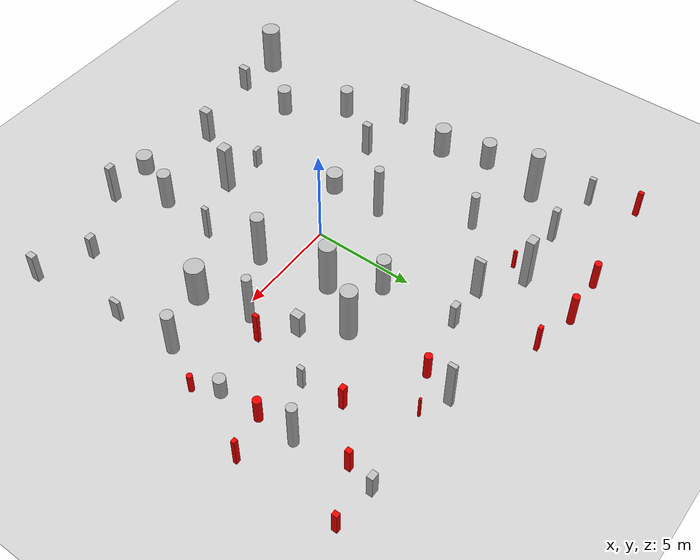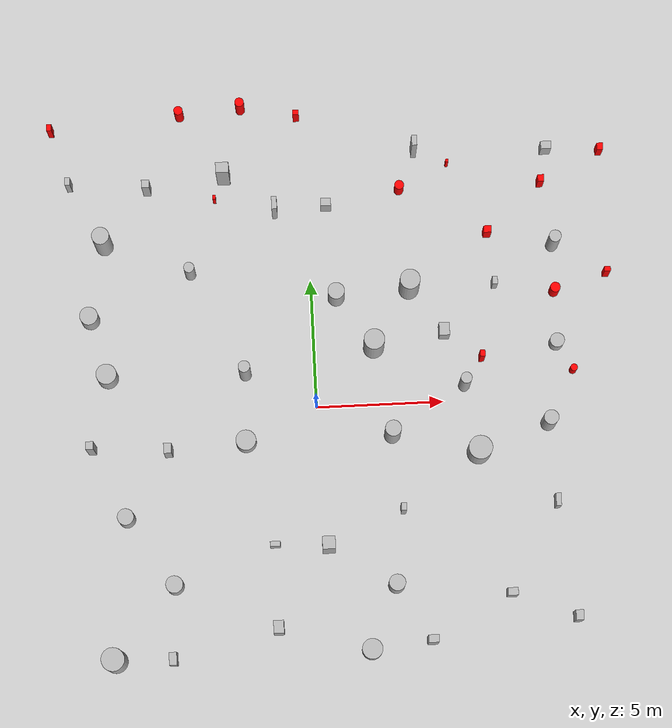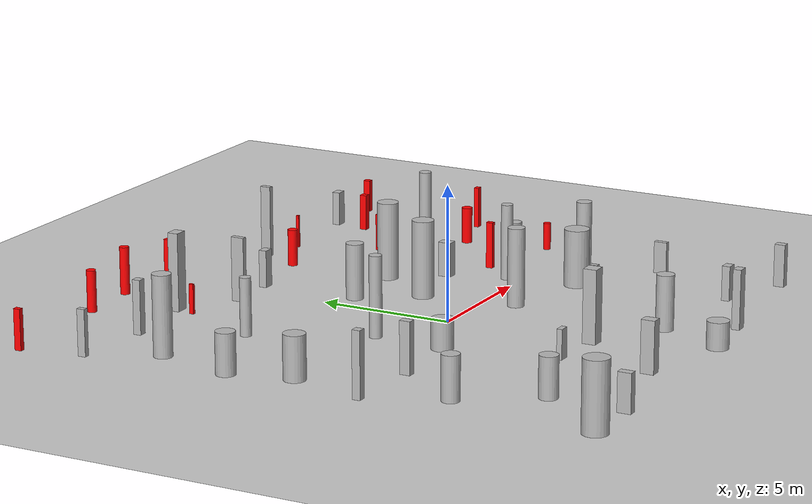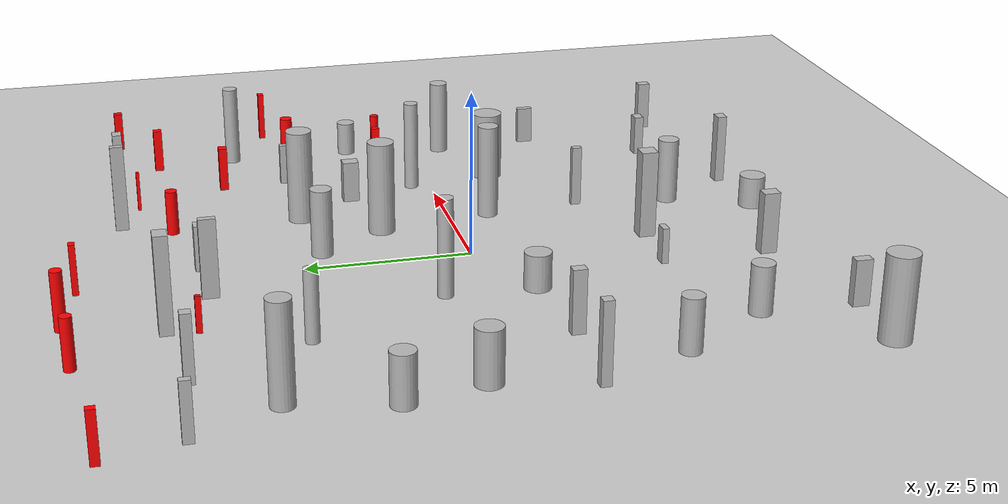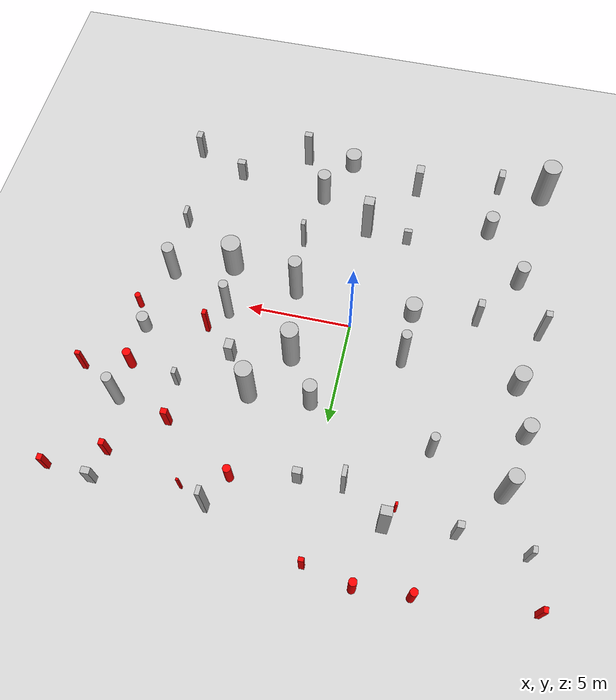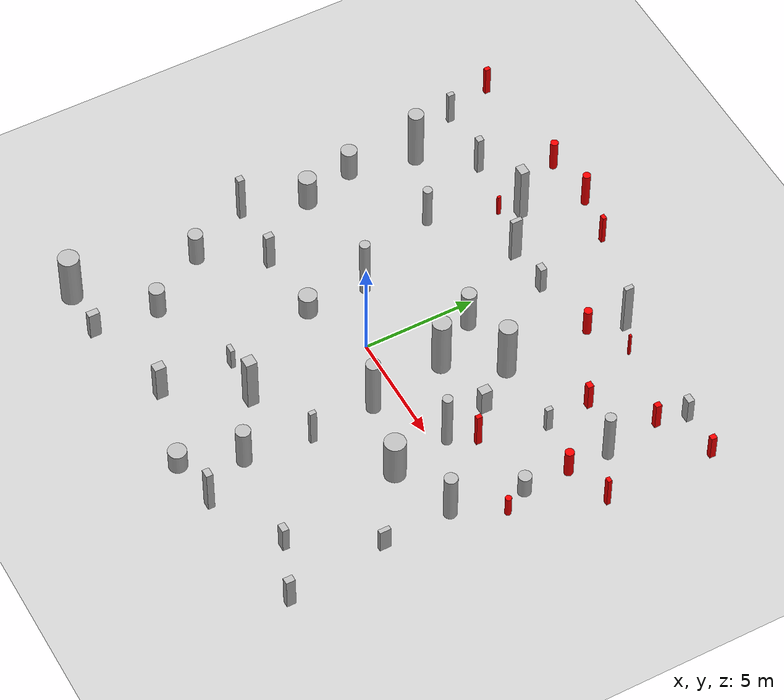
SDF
<?xml version="1.0" ?>
<sdf version="1.7">
  <world name="default">
    <include>
      <uri>model://ground_plane</uri>
    </include>
    <include>
      <uri>model://sun</uri>
    </include>
    <physics type="ode">
      <max_step_size>0.001</max_step_size>
      <real_time_factor>1</real_time_factor>
    </physics>
    <plugin name="gazebo_ros_init" filename="libgazebo_ros_init.so"/>
    <plugin name="gazebo_ros_factory" filename="libgazebo_ros_factory.so"/>
    <plugin name="gazebo_ros_force_system" filename="libgazebo_ros_force_system.so"/>
    <model name='cylinder_0_0.7_0.7_2.1'>
<static>true</static>
                            <pose>0.9762700785464951 4.30378732744839 1.0448831829968968 0 0 0</pose> <!-- X, Y, Z, Roll, Pitch, Yaw -->
                            <link name='link'>
                                <visual name='visual'>
                                <geometry>
                                    <cylinder>
                                        <radius>0.3270964398016714</radius>
                                        <length>2.0897663659937935</length>
                                    </cylinder>
                                </geometry>
                                </visual><collision name='collision'><geometry>
                                    <cylinder>
                                        <radius>0.3270964398016714</radius>
                                        <length>2.0897663659937935</length>
                                    </cylinder>
                                </geometry></collision>
                            </link>
    </model>
    <model name='cylinder_1_0.6_0.6_2.9'>
<static>true</static>
                            <pose>2.917882261333123 -1.2482557747461502 1.4636627605010293 0 0 0</pose> <!-- X, Y, Z, Roll, Pitch, Yaw -->
                            <link name='link'>
                                <visual name='visual'>
                                <geometry>
                                    <cylinder>
                                        <radius>0.3150324556477333</radius>
                                        <length>2.9273255210020586</length>
                                    </cylinder>
                                </geometry>
                                </visual><collision name='collision'><geometry>
                                    <cylinder>
                                        <radius>0.3150324556477333</radius>
                                        <length>2.9273255210020586</length>
                                    </cylinder>
                                </geometry></collision>
                            </link>
    </model>
    <model name='cylinder_2_0.4_0.4_2.9'>
<static>true</static>
                            <pose>5.834500761653292 0.5778983950580887 1.425596638292661 0 0 0</pose> <!-- X, Y, Z, Roll, Pitch, Yaw -->
                            <link name='link'>
                                <visual name='visual'>
                                <geometry>
                                    <cylinder>
                                        <radius>0.2213108174593661</radius>
                                        <length>2.851193276585322</length>
                                    </cylinder>
                                </geometry>
                                </visual><collision name='collision'><geometry>
                                    <cylinder>
                                        <radius>0.2213108174593661</radius>
                                        <length>2.851193276585322</length>
                                    </cylinder>
                                </geometry></collision>
                            </link>
    </model>
    <model name='cylinder_3_0.9_0.9_2.6'>
<static>true</static>
                            <pose>-8.257414005969185 -9.595632051193485 1.2781567509498504 0 0 0</pose> <!-- X, Y, Z, Roll, Pitch, Yaw -->
                            <link name='link'>
                                <visual name='visual'>
                                <geometry>
                                    <cylinder>
                                        <radius>0.46100364447404574</radius>
                                        <length>2.5563135018997007</length>
                                    </cylinder>
                                </geometry>
                                </visual><collision name='collision'><geometry>
                                    <cylinder>
                                        <radius>0.46100364447404574</radius>
                                        <length>2.5563135018997007</length>
                                    </cylinder>
                                </geometry></collision>
                            </link>
    </model>
    <model name='cylinder_4_0.5_0.5_2.6'>
<static>true</static>
                            <pose>9.572366844655281 5.983171284334471 1.2805291762864555 0 0 0</pose> <!-- X, Y, Z, Roll, Pitch, Yaw -->
                            <link name='link'>
                                <visual name='visual'>
                                <geometry>
                                    <cylinder>
                                        <radius>0.23548232776067998</radius>
                                        <length>2.561058352572911</length>
                                    </cylinder>
                                </geometry>
                                </visual><collision name='collision'><geometry>
                                    <cylinder>
                                        <radius>0.23548232776067998</radius>
                                        <length>2.561058352572911</length>
                                    </cylinder>
                                </geometry></collision>
                            </link>
    </model>
    <model name='cylinder_5_0.6_0.6_2.0'>
<static>true</static>
                            <pose>2.798420426550477 -7.132934251819072 1.0218483217500718 0 0 0</pose> <!-- X, Y, Z, Roll, Pitch, Yaw -->
                            <link name='link'>
                                <visual name='visual'>
                                <geometry>
                                    <cylinder>
                                        <radius>0.3243985819971571</radius>
                                        <length>2.0436966435001436</length>
                                    </cylinder>
                                </geometry>
                                </visual><collision name='collision'><geometry>
                                    <cylinder>
                                        <radius>0.3243985819971571</radius>
                                        <length>2.0436966435001436</length>
                                    </cylinder>
                                </geometry></collision>
                            </link>
    </model>
    <model name='cylinder_6_0.4_0.4_2.1'>
<static>true</static>
                            <pose>-4.70888775790746 5.484673788684333 1.0684339488686485 0 0 0</pose> <!-- X, Y, Z, Roll, Pitch, Yaw -->
                            <link name='link'>
                                <visual name='visual'>
                                <geometry>
                                    <cylinder>
                                        <radius>0.20563694013090655</radius>
                                        <length>2.136867897737297</length>
                                    </cylinder>
                                </geometry>
                                </visual><collision name='collision'><geometry>
                                    <cylinder>
                                        <radius>0.20563694013090655</radius>
                                        <length>2.136867897737297</length>
                                    </cylinder>
                                </geometry></collision>
                            </link>
    </model>
    <model name='cylinder_7_0.8_0.8_2.9'>
<static>true</static>
                            <pose>2.352709941517542 2.2419144544484286 1.4437480785146242 0 0 0</pose> <!-- X, Y, Z, Roll, Pitch, Yaw -->
                            <link name='link'>
                                <visual name='visual'>
                                <geometry>
                                    <cylinder>
                                        <radius>0.404546089731045</radius>
                                        <length>2.8874961570292483</length>
                                    </cylinder>
                                </geometry>
                                </visual><collision name='collision'><geometry>
                                    <cylinder>
                                        <radius>0.404546089731045</radius>
                                        <length>2.8874961570292483</length>
                                    </cylinder>
                                </geometry></collision>
                            </link>
    </model>
    <model name='cylinder_8_0.8_0.8_1.1'>
<static>true</static>
                            <pose>-2.80984198852428 -1.259360924013171 0.5602254716292698 0 0 0</pose> <!-- X, Y, Z, Roll, Pitch, Yaw -->
                            <link name='link'>
                                <visual name='visual'>
                                <geometry>
                                    <cylinder>
                                        <radius>0.4000300146337003</radius>
                                        <length>1.1204509432585397</length>
                                    </cylinder>
                                </geometry>
                                </visual><collision name='collision'><geometry>
                                    <cylinder>
                                        <radius>0.4000300146337003</radius>
                                        <length>1.1204509432585397</length>
                                    </cylinder>
                                </geometry></collision>
                            </link>
    </model>
    <model name='cylinder_9_0.5_0.5_3.0'>
<static>true</static>
                            <pose>-2.725784581147548 1.4039354083575937 1.4883738380592262 0 0 0</pose> <!-- X, Y, Z, Roll, Pitch, Yaw -->
                            <link name='link'>
                                <visual name='visual'>
                                <geometry>
                                    <cylinder>
                                        <radius>0.23061344322440844</radius>
                                        <length>2.9767476761184524</length>
                                    </cylinder>
                                </geometry>
                                </visual><collision name='collision'><geometry>
                                    <cylinder>
                                        <radius>0.23061344322440844</radius>
                                        <length>2.9767476761184524</length>
                                    </cylinder>
                                </geometry></collision>
                            </link>
    </model>
    <model name='cylinder_10_0.7_0.7_1.5'>
<static>true</static>
                            <pose>-5.822464878103306 -6.773809642300074 0.7532916025397821 0 0 0</pose> <!-- X, Y, Z, Roll, Pitch, Yaw -->
                            <link name='link'>
                                <visual name='visual'>
                                <geometry>
                                    <cylinder>
                                        <radius>0.3398932318568919</radius>
                                        <length>1.5065832050795642</length>
                                    </cylinder>
                                </geometry>
                                </visual><collision name='collision'><geometry>
                                    <cylinder>
                                        <radius>0.3398932318568919</radius>
                                        <length>1.5065832050795642</length>
                                    </cylinder>
                                </geometry></collision>
                            </link>
    </model>
    <model name='cylinder_11_0.7_0.7_3.0'>
<static>true</static>
                            <pose>-8.057974484138775 6.758898149976076 1.4764594650133958 0 0 0</pose> <!-- X, Y, Z, Roll, Pitch, Yaw -->
                            <link name='link'>
                                <visual name='visual'>
                                <geometry>
                                    <cylinder>
                                        <radius>0.3405953604943105</radius>
                                        <length>2.9529189300267915</length>
                                    </cylinder>
                                </geometry>
                                </visual><collision name='collision'><geometry>
                                    <cylinder>
                                        <radius>0.3405953604943105</radius>
                                        <length>2.9529189300267915</length>
                                    </cylinder>
                                </geometry></collision>
                            </link>
    </model>
    <model name='cylinder_12_0.6_0.6_1.1'>
<static>true</static>
                            <pose>9.535221763806742 2.0969103949009202 0.5391877922543207 0 0 0</pose> <!-- X, Y, Z, Roll, Pitch, Yaw -->
                            <link name='link'>
                                <visual name='visual'>
                                <geometry>
                                    <cylinder>
                                        <radius>0.2848420887729229</radius>
                                        <length>1.0783755845086413</length>
                                    </cylinder>
                                </geometry>
                                </visual><collision name='collision'><geometry>
                                    <cylinder>
                                        <radius>0.2848420887729229</radius>
                                        <length>1.0783755845086413</length>
                                    </cylinder>
                                </geometry></collision>
                            </link>
    </model>
    <model name='cylinder_13_0.6_0.6_1.6'>
<static>true</static>
                            <pose>-7.596068775736622 -4.077196049557101 0.817983179393976 0 0 0</pose> <!-- X, Y, Z, Roll, Pitch, Yaw -->
                            <link name='link'>
                                <visual name='visual'>
                                <geometry>
                                    <cylinder>
                                        <radius>0.324278898354401</radius>
                                        <length>1.635966358787952</length>
                                    </cylinder>
                                </geometry>
                                </visual><collision name='collision'><geometry>
                                    <cylinder>
                                        <radius>0.324278898354401</radius>
                                        <length>1.635966358787952</length>
                                    </cylinder>
                                </geometry></collision>
                            </link>
    </model>
    <model name='cylinder_14_0.7_0.7_1.5'>
<static>true</static>
                            <pose>-8.717050073024312 3.849442387400398 0.7653894909394454 0 0 0</pose> <!-- X, Y, Z, Roll, Pitch, Yaw -->
                            <link name='link'>
                                <visual name='visual'>
                                <geometry>
                                    <cylinder>
                                        <radius>0.3569744160400099</radius>
                                        <length>1.5307789818788908</length>
                                    </cylinder>
                                </geometry>
                                </visual><collision name='collision'><geometry>
                                    <cylinder>
                                        <radius>0.3569744160400099</radius>
                                        <length>1.5307789818788908</length>
                                    </cylinder>
                                </geometry></collision>
                            </link>
    </model>
    <model name='cylinder_15_0.8_0.8_1.6'>
<static>true</static>
                            <pose>-8.121189784831166 1.5189299111235854 0.8185689524513237 0 0 0</pose> <!-- X, Y, Z, Roll, Pitch, Yaw -->
                            <link name='link'>
                                <visual name='visual'>
                                <geometry>
                                    <cylinder>
                                        <radius>0.4002231139891045</radius>
                                        <length>1.6371379049026473</length>
                                    </cylinder>
                                </geometry>
                                </visual><collision name='collision'><geometry>
                                    <cylinder>
                                        <radius>0.4002231139891045</radius>
                                        <length>1.6371379049026473</length>
                                    </cylinder>
                                </geometry></collision>
                            </link>
    </model>
    <model name='cylinder_16_0.8_0.8_1.0'>
<static>true</static>
                            <pose>1.7302586962016626 -9.597849076250128 0.5046954761925471 0 0 0</pose> <!-- X, Y, Z, Roll, Pitch, Yaw -->
                            <link name='link'>
                                <visual name='visual'>
                                <geometry>
                                    <cylinder>
                                        <radius>0.4033449610388691</radius>
                                        <length>1.0093909523850941</length>
                                    </cylinder>
                                </geometry>
                                </visual><collision name='collision'><geometry>
                                    <cylinder>
                                        <radius>0.4033449610388691</radius>
                                        <length>1.0093909523850941</length>
                                    </cylinder>
                                </geometry></collision>
                            </link>
    </model>
    <model name='cylinder_17_0.6_0.6_2.4'>
<static>true</static>
                            <pose>9.054980230339702 -1.0574924276474533 1.1994792753175043 0 0 0</pose> <!-- X, Y, Z, Roll, Pitch, Yaw -->
                            <link name='link'>
                                <visual name='visual'>
                                <geometry>
                                    <cylinder>
                                        <radius>0.2892310852565401</radius>
                                        <length>2.3989585506350086</length>
                                    </cylinder>
                                </geometry>
                                </visual><collision name='collision'><geometry>
                                    <cylinder>
                                        <radius>0.2892310852565401</radius>
                                        <length>2.3989585506350086</length>
                                    </cylinder>
                                </geometry></collision>
                            </link>
    </model>
    <model name='cylinder_18_0.9_0.9_2.2'>
<static>true</static>
                            <pose>6.275956394049544 -2.0698851830603076 1.0812728726358587 0 0 0</pose> <!-- X, Y, Z, Roll, Pitch, Yaw -->
                            <link name='link'>
                                <visual name='visual'>
                                <geometry>
                                    <cylinder>
                                        <radius>0.4645206085564558</radius>
                                        <length>2.1625457452717174</length>
                                    </cylinder>
                                </geometry>
                                </visual><collision name='collision'><geometry>
                                    <cylinder>
                                        <radius>0.4645206085564558</radius>
                                        <length>2.1625457452717174</length>
                                    </cylinder>
                                </geometry></collision>
                            </link>
    </model>
    <model name='cylinder_19_0.8_0.8_2.9'>
<static>true</static>
                            <pose>3.850631801555318 4.50508559639281 1.4560836347232238 0 0 0</pose> <!-- X, Y, Z, Roll, Pitch, Yaw -->
                            <link name='link'>
                                <visual name='visual'>
                                <geometry>
                                    <cylinder>
                                        <radius>0.3931970597688912</radius>
                                        <length>2.9121672694464475</length>
                                    </cylinder>
                                </geometry>
                                </visual><collision name='collision'><geometry>
                                    <cylinder>
                                        <radius>0.3931970597688912</radius>
                                        <length>2.9121672694464475</length>
                                    </cylinder>
                                </geometry></collision>
                            </link>
    </model>
    <model name='box_0_0.2_0.3_1.9'>
<static>true</static>
                            <pose>3.2034707498537003 -4.198447855791119 0.9287687009457661 0 0 0</pose> <!-- X, Y, Z, Roll, Pitch, Yaw -->
                            <link name='link'>
                                <visual name='visual'>
                                <geometry>
                                    <box>
                                        <size>0.2 0.3 1.9</size> <!-- Width, Depth, Height -->
                                    </box>
                                </geometry>
                                </visual><collision name='collision'><geometry>
                                    <box>
                                        <size>0.2 0.3 1.9</size> <!-- Width, Depth, Height -->
                                    </box>
                                </geometry></collision>
                            </link>
    </model>
    <model name='box_1_0.2_0.5_2.4'>
<static>true</static>
                            <pose>-1.2827014946874638 7.838467100313441 1.2038885835403663 0 0 0</pose> <!-- X, Y, Z, Roll, Pitch, Yaw -->
                            <link name='link'>
                                <visual name='visual'>
                                <geometry>
                                    <box>
                                        <size>0.2 0.5 2.4</size> <!-- Width, Depth, Height -->
                                    </box>
                                </geometry>
                                </visual><collision name='collision'><geometry>
                                    <box>
                                        <size>0.2 0.5 2.4</size> <!-- Width, Depth, Height -->
                                    </box>
                                </geometry></collision>
                            </link>
    </model>
    <model name='box_2_0.2_0.4_2.7'>
<static>true</static>
                            <pose>4.2848259909822275 9.976940131357331 1.3681260573682144 0 0 0</pose> <!-- X, Y, Z, Roll, Pitch, Yaw -->
                            <link name='link'>
                                <visual name='visual'>
                                <geometry>
                                    <box>
                                        <size>0.2 0.4 2.7</size> <!-- Width, Depth, Height -->
                                    </box>
                                </geometry>
                                </visual><collision name='collision'><geometry>
                                    <box>
                                        <size>0.2 0.4 2.7</size> <!-- Width, Depth, Height -->
                                    </box>
                                </geometry></collision>
                            </link>
    </model>
    <model name='box_3_0.4_0.5_1.9'>
<static>true</static>
                            <pose>-1.8563340554800067 -8.61666009089724 0.9535426826780689 0 0 0</pose> <!-- X, Y, Z, Roll, Pitch, Yaw -->
                            <link name='link'>
                                <visual name='visual'>
                                <geometry>
                                    <box>
                                        <size>0.4 0.5 1.9</size> <!-- Width, Depth, Height -->
                                    </box>
                                </geometry>
                                </visual><collision name='collision'><geometry>
                                    <box>
                                        <size>0.4 0.5 1.9</size> <!-- Width, Depth, Height -->
                                    </box>
                                </geometry></collision>
                            </link>
    </model>
    <model name='box_4_0.3_0.5_1.4'>
<static>true</static>
                            <pose>-6.000069502071998 -9.62956411078772 0.7239246880603801 0 0 0</pose> <!-- X, Y, Z, Roll, Pitch, Yaw -->
                            <link name='link'>
                                <visual name='visual'>
                                <geometry>
                                    <box>
                                        <size>0.3 0.5 1.4</size> <!-- Width, Depth, Height -->
                                    </box>
                                </geometry>
                                </visual><collision name='collision'><geometry>
                                    <box>
                                        <size>0.3 0.5 1.4</size> <!-- Width, Depth, Height -->
                                    </box>
                                </geometry></collision>
                            </link>
    </model>
    <model name='box_5_0.4_0.3_2.2'>
<static>true</static>
                            <pose>4.088288038470655 -9.363221409373843 1.1214784014997634 0 0 0</pose> <!-- X, Y, Z, Roll, Pitch, Yaw -->
                            <link name='link'>
                                <visual name='visual'>
                                <geometry>
                                    <box>
                                        <size>0.4 0.3 2.2</size> <!-- Width, Depth, Height -->
                                    </box>
                                </geometry>
                                </visual><collision name='collision'><geometry>
                                    <box>
                                        <size>0.4 0.3 2.2</size> <!-- Width, Depth, Height -->
                                    </box>
                                </geometry></collision>
                            </link>
    </model>
    <model name='box_6_0.3_0.3_2.0'>
<static>true</static>
                            <pose>-6.276139882393277 8.887447799678672 0.9904588086175671 0 0 0</pose> <!-- X, Y, Z, Roll, Pitch, Yaw -->
                            <link name='link'>
                                <visual name='visual'>
                                <geometry>
                                    <box>
                                        <size>0.3 0.3 2.0</size> <!-- Width, Depth, Height -->
                                    </box>
                                </geometry>
                                </visual><collision name='collision'><geometry>
                                    <box>
                                        <size>0.3 0.3 2.0</size> <!-- Width, Depth, Height -->
                                    </box>
                                </geometry></collision>
                            </link>
    </model>
    <model name='box_7_0.3_0.3_2.4'>
<static>true</static>
                            <pose>-8.839416793522489 -1.3116674888375854 1.1963434888154594 0 0 0</pose> <!-- X, Y, Z, Roll, Pitch, Yaw -->
                            <link name='link'>
                                <visual name='visual'>
                                <geometry>
                                    <box>
                                        <size>0.3 0.3 2.4</size> <!-- Width, Depth, Height -->
                                    </box>
                                </geometry>
                                </visual><collision name='collision'><geometry>
                                    <box>
                                        <size>0.3 0.3 2.4</size> <!-- Width, Depth, Height -->
                                    </box>
                                </geometry></collision>
                            </link>
    </model>
    <model name='box_8_0.4_0.3_1.4'>
<static>true</static>
                            <pose>0.731584222174444 7.933425860806842 0.7168969843984739 0 0 0</pose> <!-- X, Y, Z, Roll, Pitch, Yaw -->
                            <link name='link'>
                                <visual name='visual'>
                                <geometry>
                                    <box>
                                        <size>0.4 0.3 1.4</size> <!-- Width, Depth, Height -->
                                    </box>
                                </geometry>
                                </visual><collision name='collision'><geometry>
                                    <box>
                                        <size>0.4 0.3 1.4</size> <!-- Width, Depth, Height -->
                                    </box>
                                </geometry></collision>
                            </link>
    </model>
    <model name='box_9_0.3_0.4_1.9'>
<static>true</static>
                            <pose>-5.850598491177812 -1.5062906249698749 0.9635754243648107 0 0 0</pose> <!-- X, Y, Z, Roll, Pitch, Yaw -->
                            <link name='link'>
                                <visual name='visual'>
                                <geometry>
                                    <box>
                                        <size>0.3 0.4 1.9</size> <!-- Width, Depth, Height -->
                                    </box>
                                </geometry>
                                </visual><collision name='collision'><geometry>
                                    <box>
                                        <size>0.3 0.4 1.9</size> <!-- Width, Depth, Height -->
                                    </box>
                                </geometry></collision>
                            </link>
    </model>
    <model name='box_10_0.4_0.3_1.3'>
<static>true</static>
                            <pose>7.277112118464629 -7.649362880759338 0.6320681063451533 0 0 0</pose> <!-- X, Y, Z, Roll, Pitch, Yaw -->
                            <link name='link'>
                                <visual name='visual'>
                                <geometry>
                                    <box>
                                        <size>0.4 0.3 1.3</size> <!-- Width, Depth, Height -->
                                    </box>
                                </geometry>
                                </visual><collision name='collision'><geometry>
                                    <box>
                                        <size>0.4 0.3 1.3</size> <!-- Width, Depth, Height -->
                                    </box>
                                </geometry></collision>
                            </link>
    </model>
    <model name='box_11_0.2_0.5_1.2'>
<static>true</static>
                            <pose>9.23872757094458 -4.157049464149023 0.6002939422654978 0 0 0</pose> <!-- X, Y, Z, Roll, Pitch, Yaw -->
                            <link name='link'>
                                <visual name='visual'>
                                <geometry>
                                    <box>
                                        <size>0.2 0.5 1.2</size> <!-- Width, Depth, Height -->
                                    </box>
                                </geometry>
                                </visual><collision name='collision'><geometry>
                                    <box>
                                        <size>0.2 0.5 1.2</size> <!-- Width, Depth, Height -->
                                    </box>
                                </geometry></collision>
                            </link>
    </model>
    <model name='box_12_0.5_0.4_2.9'>
<static>true</static>
                            <pose>-3.236820963263087 9.231403090829971 1.4493188224156814 0 0 0</pose> <!-- X, Y, Z, Roll, Pitch, Yaw -->
                            <link name='link'>
                                <visual name='visual'>
                                <geometry>
                                    <box>
                                        <size>0.5 0.4 2.9</size> <!-- Width, Depth, Height -->
                                    </box>
                                </geometry>
                                </visual><collision name='collision'><geometry>
                                    <box>
                                        <size>0.5 0.4 2.9</size> <!-- Width, Depth, Height -->
                                    </box>
                                </geometry></collision>
                            </link>
    </model>
    <model name='box_13_0.5_0.5_2.7'>
<static>true</static>
                            <pose>0.22637965092912005 -5.513659420505215 1.3621915174216834 0 0 0</pose> <!-- X, Y, Z, Roll, Pitch, Yaw -->
                            <link name='link'>
                                <visual name='visual'>
                                <geometry>
                                    <box>
                                        <size>0.5 0.5 2.7</size> <!-- Width, Depth, Height -->
                                    </box>
                                </geometry>
                                </visual><collision name='collision'><geometry>
                                    <box>
                                        <size>0.5 0.5 2.7</size> <!-- Width, Depth, Height -->
                                    </box>
                                </geometry></collision>
                            </link>
    </model>
    <model name='box_14_0.4_0.2_1.1'>
<static>true</static>
                            <pose>-1.8551765717238524 -5.355317156581146 0.5534271817868253 0 0 0</pose> <!-- X, Y, Z, Roll, Pitch, Yaw -->
                            <link name='link'>
                                <visual name='visual'>
                                <geometry>
                                    <box>
                                        <size>0.4 0.2 1.1</size> <!-- Width, Depth, Height -->
                                    </box>
                                </geometry>
                                </visual><collision name='collision'><geometry>
                                    <box>
                                        <size>0.4 0.2 1.1</size> <!-- Width, Depth, Height -->
                                    </box>
                                </geometry></collision>
                            </link>
    </model>
    <model name='box_15_0.2_0.3_1.3'>
<static>true</static>
                            <pose>7.211023476575875 4.540885254226566 0.6314827992911276 0 0 0</pose> <!-- X, Y, Z, Roll, Pitch, Yaw -->
                            <link name='link'>
                                <visual name='visual'>
                                <geometry>
                                    <box>
                                        <size>0.2 0.3 1.3</size> <!-- Width, Depth, Height -->
                                    </box>
                                </geometry>
                                </visual><collision name='collision'><geometry>
                                    <box>
                                        <size>0.2 0.3 1.3</size> <!-- Width, Depth, Height -->
                                    </box>
                                </geometry></collision>
                            </link>
    </model>
    <model name='box_16_0.4_0.5_1.3'>
<static>true</static>
                            <pose>5.135572854737784 2.721221108942826 0.6605388224852564 0 0 0</pose> <!-- X, Y, Z, Roll, Pitch, Yaw -->
                            <link name='link'>
                                <visual name='visual'>
                                <geometry>
                                    <box>
                                        <size>0.4 0.5 1.3</size> <!-- Width, Depth, Height -->
                                    </box>
                                </geometry>
                                </visual><collision name='collision'><geometry>
                                    <box>
                                        <size>0.4 0.5 1.3</size> <!-- Width, Depth, Height -->
                                    </box>
                                </geometry></collision>
                            </link>
    </model>
    <model name='box_17_0.2_0.3_1.7'>
<static>true</static>
                            <pose>-9.333907469066077 9.17965443726947 0.8567068904025429 0 0 0</pose> <!-- X, Y, Z, Roll, Pitch, Yaw -->
                            <link name='link'>
                                <visual name='visual'>
                                <geometry>
                                    <box>
                                        <size>0.2 0.3 1.7</size> <!-- Width, Depth, Height -->
                                    </box>
                                </geometry>
                                </visual><collision name='collision'><geometry>
                                    <box>
                                        <size>0.2 0.3 1.7</size> <!-- Width, Depth, Height -->
                                    </box>
                                </geometry></collision>
                            </link>
    </model>
    <model name='box_18_0.4_0.3_1.3'>
<static>true</static>
                            <pose>9.485124256361004 9.806900031217879 0.6629544260466054 0 0 0</pose> <!-- X, Y, Z, Roll, Pitch, Yaw -->
                            <link name='link'>
                                <visual name='visual'>
                                <geometry>
                                    <box>
                                        <size>0.4 0.3 1.3</size> <!-- Width, Depth, Height -->
                                    </box>
                                </geometry>
                                </visual><collision name='collision'><geometry>
                                    <box>
                                        <size>0.4 0.3 1.3</size> <!-- Width, Depth, Height -->
                                    </box>
                                </geometry></collision>
                            </link>
    </model>
    <model name='box_19_0.3_0.4_1.6'>
<static>true</static>
                            <pose>9.78819554568863 -8.693915856964395 0.7883984973314939 0 0 0</pose> <!-- X, Y, Z, Roll, Pitch, Yaw -->
                            <link name='link'>
                                <visual name='visual'>
                                <geometry>
                                    <box>
                                        <size>0.3 0.4 1.6</size> <!-- Width, Depth, Height -->
                                    </box>
                                </geometry>
                                </visual><collision name='collision'><geometry>
                                    <box>
                                        <size>0.3 0.4 1.6</size> <!-- Width, Depth, Height -->
                                    </box>
                                </geometry></collision>
                            </link>
    </model>

    <model name='dynamic_cylinder_2_0.3_0.3_1.6'>
<static>true</static>
                            <pose>-4.882649638463283 11.808269841947379 0.7759073060311001 0 0 0</pose> <!-- X, Y, Z, Roll, Pitch, Yaw -->
                            <link name='link'>
                                <visual name='visual'>
                                    <geometry>
                                        <cylinder>
                                            <radius>0.17307090991274762</radius>
                                            <length>1.5518146120622003</length>
                                        </cylinder>
                                    </geometry>
                                    <material>
                                        <ambient>1 0 0 1</ambient> <!-- Red color -->
                                        <diffuse>1 0 0 1</diffuse> <!-- Red color -->
                                        <specular>0.5 0.5 0.5 1</specular> <!-- Specular highlight -->
                                    </material>
                                </visual><collision name='collision'><geometry>
                                        <cylinder>
                                            <radius>0.17307090991274762</radius>
                                            <length>1.5518146120622003</length>
                                        </cylinder>
                                    </geometry></collision>
                            </link>
                            <plugin name="obstacle_motion" filename="libobstacle_path_plugin.so">
                                <orientation>false</orientation>
                                <loop>0</loop>
                                <velocity>0.3116712717961177</velocity>
                                <path>
                                <waypoint>-4.882649638463283 11.808269841947379 0.7759073060311001</waypoint>
                                <waypoint>-9.458252282826427 10.82286266532946 0.7759073060311001</waypoint>
                                </path>
                            </plugin>
    </model>

    <model name='dynamic_cylinder_13_0.3_0.3_1.0'>
<static>true</static>
                            <pose>10.136351563119192 0.9931390501712585 0.5144135269714278 0 0 0</pose> <!-- X, Y, Z, Roll, Pitch, Yaw -->
                            <link name='link'>
                                <visual name='visual'>
                                    <geometry>
                                        <cylinder>
                                            <radius>0.1389134677101186</radius>
                                            <length>1.0288270539428557</length>
                                        </cylinder>
                                    </geometry>
                                    <material>
                                        <ambient>1 0 0 1</ambient> <!-- Red color -->
                                        <diffuse>1 0 0 1</diffuse> <!-- Red color -->
                                        <specular>0.5 0.5 0.5 1</specular> <!-- Specular highlight -->
                                    </material>
                                </visual><collision name='collision'><geometry>
                                        <cylinder>
                                            <radius>0.1389134677101186</radius>
                                            <length>1.0288270539428557</length>
                                        </cylinder>
                                    </geometry></collision>
                            </link>
                            <plugin name="obstacle_motion" filename="libobstacle_path_plugin.so">
                                <orientation>false</orientation>
                                <loop>0</loop>
                                <velocity>0.33495440083218797</velocity>
                                <path>
                                <waypoint>10.136351563119192 0.9931390501712585 0.5144135269714278</waypoint>
                                <waypoint>7.917536846480235 11.238873847063136 0.5144135269714278</waypoint>
                                </path>
                            </plugin>
    </model>

    <model name='dynamic_cylinder_15_0.4_0.4_1.4'>
<static>true</static>
                            <pose>9.553496573129642 4.141975471116513 0.6882595796855638 0 0 0</pose> <!-- X, Y, Z, Roll, Pitch, Yaw -->
                            <link name='link'>
                                <visual name='visual'>
                                    <geometry>
                                        <cylinder>
                                            <radius>0.19795269293354587</radius>
                                            <length>1.3765191593711277</length>
                                        </cylinder>
                                    </geometry>
                                    <material>
                                        <ambient>1 0 0 1</ambient> <!-- Red color -->
                                        <diffuse>1 0 0 1</diffuse> <!-- Red color -->
                                        <specular>0.5 0.5 0.5 1</specular> <!-- Specular highlight -->
                                    </material>
                                </visual><collision name='collision'><geometry>
                                        <cylinder>
                                            <radius>0.19795269293354587</radius>
                                            <length>1.3765191593711277</length>
                                        </cylinder>
                                    </geometry></collision>
                            </link>
                            <plugin name="obstacle_motion" filename="libobstacle_path_plugin.so">
                                <orientation>false</orientation>
                                <loop>0</loop>
                                <velocity>0.3756490349846924</velocity>
                                <path>
                                <waypoint>9.553496573129642 4.141975471116513 0.6882595796855638</waypoint>
                                <waypoint>-4.693287255662922 11.95109403188816 0.6882595796855638</waypoint>
                                </path>
                            </plugin>
    </model>

    <model name='dynamic_cylinder_18_0.4_0.4_1.8'>
<static>true</static>
                            <pose>-2.465838067966992 11.982671854132107 0.8904902653815281 0 0 0</pose> <!-- X, Y, Z, Roll, Pitch, Yaw -->
                            <link name='link'>
                                <visual name='visual'>
                                    <geometry>
                                        <cylinder>
                                            <radius>0.17645619743577087</radius>
                                            <length>1.7809805307630562</length>
                                        </cylinder>
                                    </geometry>
                                    <material>
                                        <ambient>1 0 0 1</ambient> <!-- Red color -->
                                        <diffuse>1 0 0 1</diffuse> <!-- Red color -->
                                        <specular>0.5 0.5 0.5 1</specular> <!-- Specular highlight -->
                                    </material>
                                </visual><collision name='collision'><geometry>
                                        <cylinder>
                                            <radius>0.17645619743577087</radius>
                                            <length>1.7809805307630562</length>
                                        </cylinder>
                                    </geometry></collision>
                            </link>
                            <plugin name="obstacle_motion" filename="libobstacle_path_plugin.so">
                                <orientation>false</orientation>
                                <loop>0</loop>
                                <velocity>0.47795873128910804</velocity>
                                <path>
                                <waypoint>-2.465838067966992 11.982671854132107 0.8904902653815281</waypoint>
                                <waypoint>5.313760031038861 3.3019846687390277 0.8904902653815281</waypoint>
                                </path>
                            </plugin>
    </model>

    <model name='dynamic_cylinder_38_0.4_0.4_1.4'>
<static>true</static>
                            <pose>3.6509902762113366 8.477903427804307 0.6935011458806944 0 0 0</pose> <!-- X, Y, Z, Roll, Pitch, Yaw -->
                            <link name='link'>
                                <visual name='visual'>
                                    <geometry>
                                        <cylinder>
                                            <radius>0.18237176720231696</radius>
                                            <length>1.387002291761389</length>
                                        </cylinder>
                                    </geometry>
                                    <material>
                                        <ambient>1 0 0 1</ambient> <!-- Red color -->
                                        <diffuse>1 0 0 1</diffuse> <!-- Red color -->
                                        <specular>0.5 0.5 0.5 1</specular> <!-- Specular highlight -->
                                    </material>
                                </visual><collision name='collision'><geometry>
                                        <cylinder>
                                            <radius>0.18237176720231696</radius>
                                            <length>1.387002291761389</length>
                                        </cylinder>
                                    </geometry></collision>
                            </link>
                            <plugin name="obstacle_motion" filename="libobstacle_path_plugin.so">
                                <orientation>false</orientation>
                                <loop>0</loop>
                                <velocity>0.35122275900400357</velocity>
                                <path>
                                <waypoint>3.6509902762113366 8.477903427804307 0.6935011458806944</waypoint>
                                <waypoint>11.260940921224446 -5.6248188590052655 0.6935011458806944</waypoint>
                                </path>
                            </plugin>
    </model>

    <model name='dynamic_box_3_0.2_0.2_1.6'>
<static>true</static>
                            <pose>11.612491912358802 4.735926019921237 0.8270611917364601 0 0 0</pose> <!-- X, Y, Z, Roll, Pitch, Yaw -->
                            <link name='link'>
                                <visual name='visual'>
                                    <geometry>
                                        <box>
                                            <size>0.23293311730688773 0.18461088803322423 1.5762126820038065</size> <!-- Width, Depth, Height -->
                                        </box>
                                    </geometry>
                                    <material>
                                        <ambient>1 0 0 1</ambient> <!-- Red color -->
                                        <diffuse>1 0 0 1</diffuse> <!-- Red color -->
                                        <specular>0.5 0.5 0.5 1</specular> <!-- Specular highlight -->
                                    </material>
                                </visual><collision name='collision'><geometry>
                                        <box>
                                            <size>0.23293311730688773 0.18461088803322423 1.5762126820038065</size> <!-- Width, Depth, Height -->
                                        </box>
                                    </geometry></collision>
                            </link>
                            <plugin name="obstacle_motion" filename="libobstacle_path_plugin.so">
                                <orientation>false</orientation>
                                <loop>0</loop>
                                <velocity>0.4850790050584881</velocity>
                                <path>
                                <waypoint>11.612491912358802 4.735926019921237 0.8270611917364601</waypoint>
                                <waypoint>-5.669575525188909 10.67101724213098 0.8016611843127539</waypoint>
                                </path>
                            </plugin>
    </model>

    <model name='dynamic_box_5_0.2_0.3_1.8'>
<static>true</static>
                            <pose>6.558219025608558 1.6246259720842566 0.9736023682772382 0 0 0</pose> <!-- X, Y, Z, Roll, Pitch, Yaw -->
                            <link name='link'>
                                <visual name='visual'>
                                    <geometry>
                                        <box>
                                            <size>0.19164245195172241 0.25148131116434513 1.75060490957117</size> <!-- Width, Depth, Height -->
                                        </box>
                                    </geometry>
                                    <material>
                                        <ambient>1 0 0 1</ambient> <!-- Red color -->
                                        <diffuse>1 0 0 1</diffuse> <!-- Red color -->
                                        <specular>0.5 0.5 0.5 1</specular> <!-- Specular highlight -->
                                    </material>
                                </visual><collision name='collision'><geometry>
                                        <box>
                                            <size>0.19164245195172241 0.25148131116434513 1.75060490957117</size> <!-- Width, Depth, Height -->
                                        </box>
                                    </geometry></collision>
                            </link>
                            <plugin name="obstacle_motion" filename="libobstacle_path_plugin.so">
                                <orientation>false</orientation>
                                <loop>0</loop>
                                <velocity>0.34891392180411257</velocity>
                                <path>
                                <waypoint>6.558219025608558 1.6246259720842566 0.9736023682772382</waypoint>
                                <waypoint>11.57394665492026 11.824007843142393 0.8871640066221615</waypoint>
                                </path>
                            </plugin>
    </model>

    <model name='dynamic_box_14_0.2_0.3_1.3'>
<static>true</static>
                            <pose>11.60241547762983 9.651149155301571 0.673805844614612 0 0 0</pose> <!-- X, Y, Z, Roll, Pitch, Yaw -->
                            <link name='link'>
                                <visual name='visual'>
                                    <geometry>
                                        <box>
                                            <size>0.23430553935315163 0.26859465928021686 1.2558671115065234</size> <!-- Width, Depth, Height -->
                                        </box>
                                    </geometry>
                                    <material>
                                        <ambient>1 0 0 1</ambient> <!-- Red color -->
                                        <diffuse>1 0 0 1</diffuse> <!-- Red color -->
                                        <specular>0.5 0.5 0.5 1</specular> <!-- Specular highlight -->
                                    </material>
                                </visual><collision name='collision'><geometry>
                                        <box>
                                            <size>0.23430553935315163 0.26859465928021686 1.2558671115065234</size> <!-- Width, Depth, Height -->
                                        </box>
                                    </geometry></collision>
                            </link>
                            <plugin name="obstacle_motion" filename="libobstacle_path_plugin.so">
                                <orientation>false</orientation>
                                <loop>0</loop>
                                <velocity>0.3392901983641908</velocity>
                                <path>
                                <waypoint>11.60241547762983 9.651149155301571 0.673805844614612</waypoint>
                                <waypoint>7.61887832683599 6.457127863683375 0.6957230527151138</waypoint>
                                </path>
                            </plugin>
    </model>

    <model name='dynamic_box_18_0.1_0.2_1.1'>
<static>true</static>
                            <pose>-3.6320352547591757 8.371992614505842 0.6314873975634193 0 0 0</pose> <!-- X, Y, Z, Roll, Pitch, Yaw -->
                            <link name='link'>
                                <visual name='visual'>
                                    <geometry>
                                        <box>
                                            <size>0.1119515835920788 0.17005424146897083 1.1019991054159908</size> <!-- Width, Depth, Height -->
                                        </box>
                                    </geometry>
                                    <material>
                                        <ambient>1 0 0 1</ambient> <!-- Red color -->
                                        <diffuse>1 0 0 1</diffuse> <!-- Red color -->
                                        <specular>0.5 0.5 0.5 1</specular> <!-- Specular highlight -->
                                    </material>
                                </visual><collision name='collision'><geometry>
                                        <box>
                                            <size>0.1119515835920788 0.17005424146897083 1.1019991054159908</size> <!-- Width, Depth, Height -->
                                        </box>
                                    </geometry></collision>
                            </link>
                            <plugin name="obstacle_motion" filename="libobstacle_path_plugin.so">
                                <orientation>false</orientation>
                                <loop>0</loop>
                                <velocity>0.46812818164009556</velocity>
                                <path>
                                <waypoint>-3.6320352547591757 8.371992614505842 0.6314873975634193</waypoint>
                                <waypoint>11.960517050382467 8.335384520009637 0.5924452061885633</waypoint>
                                </path>
                            </plugin>
    </model>

    <model name='dynamic_box_20_0.1_0.1_1.2'>
<static>true</static>
                            <pose>5.571413259352834 9.36267699325937 0.7219216594104638 0 0 0</pose> <!-- X, Y, Z, Roll, Pitch, Yaw -->
                            <link name='link'>
                                <visual name='visual'>
                                    <geometry>
                                        <box>
                                            <size>0.10855262758955977 0.10007346875029158 1.2460256313749696</size> <!-- Width, Depth, Height -->
                                        </box>
                                    </geometry>
                                    <material>
                                        <ambient>1 0 0 1</ambient> <!-- Red color -->
                                        <diffuse>1 0 0 1</diffuse> <!-- Red color -->
                                        <specular>0.5 0.5 0.5 1</specular> <!-- Specular highlight -->
                                    </material>
                                </visual><collision name='collision'><geometry>
                                        <box>
                                            <size>0.10855262758955977 0.10007346875029158 1.2460256313749696</size> <!-- Width, Depth, Height -->
                                        </box>
                                    </geometry></collision>
                            </link>
                            <plugin name="obstacle_motion" filename="libobstacle_path_plugin.so">
                                <orientation>false</orientation>
                                <loop>0</loop>
                                <velocity>0.4751384540469846</velocity>
                                <path>
                                <waypoint>5.571413259352834 9.36267699325937 0.7219216594104638</waypoint>
                                <waypoint>3.9085554853708757 8.288748448026311 0.7008167003799547</waypoint>
                                </path>
                            </plugin>
    </model>

    <model name='dynamic_box_22_0.2_0.3_1.5'>
<static>true</static>
                            <pose>-9.97892964688362 11.37343977537287 0.8188162910218003 0 0 0</pose> <!-- X, Y, Z, Roll, Pitch, Yaw -->
                            <link name='link'>
                                <visual name='visual'>
                                    <geometry>
                                        <box>
                                            <size>0.1938768710290306 0.25189005029152856 1.497505913115492</size> <!-- Width, Depth, Height -->
                                        </box>
                                    </geometry>
                                    <material>
                                        <ambient>1 0 0 1</ambient> <!-- Red color -->
                                        <diffuse>1 0 0 1</diffuse> <!-- Red color -->
                                        <specular>0.5 0.5 0.5 1</specular> <!-- Specular highlight -->
                                    </material>
                                </visual><collision name='collision'><geometry>
                                        <box>
                                            <size>0.1938768710290306 0.25189005029152856 1.497505913115492</size> <!-- Width, Depth, Height -->
                                        </box>
                                    </geometry></collision>
                            </link>
                            <plugin name="obstacle_motion" filename="libobstacle_path_plugin.so">
                                <orientation>false</orientation>
                                <loop>0</loop>
                                <velocity>0.4057483023398896</velocity>
                                <path>
                                <waypoint>-9.97892964688362 11.37343977537287 0.8188162910218003</waypoint>
                                <waypoint>8.203577745722047 1.600064144712828 0.796433092950632</waypoint>
                                </path>
                            </plugin>
    </model>

    <model name='dynamic_box_27_0.2_0.2_1.5'>
<static>true</static>
                            <pose>-0.2776058895400091 11.523816898583817 0.8151916390081284 0 0 0</pose> <!-- X, Y, Z, Roll, Pitch, Yaw -->
                            <link name='link'>
                                <visual name='visual'>
                                    <geometry>
                                        <box>
                                            <size>0.23428550922512406 0.1844814989537329 1.545861263250047</size> <!-- Width, Depth, Height -->
                                        </box>
                                    </geometry>
                                    <material>
                                        <ambient>1 0 0 1</ambient> <!-- Red color -->
                                        <diffuse>1 0 0 1</diffuse> <!-- Red color -->
                                        <specular>0.5 0.5 0.5 1</specular> <!-- Specular highlight -->
                                    </material>
                                </visual><collision name='collision'><geometry>
                                        <box>
                                            <size>0.23428550922512406 0.1844814989537329 1.545861263250047</size> <!-- Width, Depth, Height -->
                                        </box>
                                    </geometry></collision>
                            </link>
                            <plugin name="obstacle_motion" filename="libobstacle_path_plugin.so">
                                <orientation>false</orientation>
                                <loop>0</loop>
                                <velocity>0.4611404676077355</velocity>
                                <path>
                                <waypoint>-0.2776058895400091 11.523816898583817 0.8151916390081284</waypoint>
                                <waypoint>-4.1607544889758135 7.720126426309633 0.8277213015608267</waypoint>
                                </path>
                            </plugin>
    </model>
    <model name='dynamic_box_28_0.2_0.3_1.4'>
<static>true</static>
                            <pose>9.211810714669394 8.482784000374973 0.7239181797358826 0 0 0</pose> <!-- X, Y, Z, Roll, Pitch, Yaw -->
                            <link name='link'>
                                <visual name='visual'>
                                    <geometry>
                                        <box>
                                            <size>0.24004075374698725 0.2716955137203708 1.3765857239641852</size> <!-- Width, Depth, Height -->
                                        </box>
                                    </geometry>
                                    <material>
                                        <ambient>1 0 0 1</ambient> <!-- Red color -->
                                        <diffuse>1 0 0 1</diffuse> <!-- Red color -->
                                        <specular>0.5 0.5 0.5 1</specular> <!-- Specular highlight -->
                                    </material>
                                </visual><collision name='collision'><geometry>
                                        <box>
                                            <size>0.24004075374698725 0.2716955137203708 1.3765857239641852</size> <!-- Width, Depth, Height -->
                                        </box>
                                    </geometry></collision>
                            </link>
                            <plugin name="obstacle_motion" filename="libobstacle_path_plugin.so">
                                <orientation>false</orientation>
                                <loop>0</loop>
                                <velocity>0.30293316419441413</velocity>
                                <path>
                                <waypoint>9.211810714669394 8.482784000374973 0.7239181797358826</waypoint>
                                <waypoint>6.1711146674175765 11.671897512038132 0.7409250231772258</waypoint>
                                </path>
                            </plugin>
    </model>
    <model name='dynamic_box_29_0.3_0.3_1.4'>
<static>true</static>
                            <pose>7.0213240159307055 6.559973288877288 0.7124456953123308 0 0 0</pose> <!-- X, Y, Z, Roll, Pitch, Yaw -->
                            <link name='link'>
                                <visual name='visual'>
                                    <geometry>
                                        <box>
                                            <size>0.29302326498389397 0.2593024511477507 1.4064354710919893</size> <!-- Width, Depth, Height -->
                                        </box>
                                    </geometry>
                                    <material>
                                        <ambient>1 0 0 1</ambient> <!-- Red color -->
                                        <diffuse>1 0 0 1</diffuse> <!-- Red color -->
                                        <specular>0.5 0.5 0.5 1</specular> <!-- Specular highlight -->
                                    </material>
                                </visual><collision name='collision'><geometry>
                                        <box>
                                            <size>0.29302326498389397 0.2593024511477507 1.4064354710919893</size> <!-- Width, Depth, Height -->
                                        </box>
                                    </geometry></collision>
                            </link>
                            <plugin name="obstacle_motion" filename="libobstacle_path_plugin.so">
                                <orientation>false</orientation>
                                <loop>0</loop>
                                <velocity>0.39221880006067145</velocity>
                                <path>
                                <waypoint>7.0213240159307055 6.559973288877288 0.7124456953123308</waypoint>
                                <waypoint>4.4523052570986295 5.184574101205847 0.7894343622501974</waypoint>
                                </path>
                            </plugin>
    </model>

  </world>
</sdf>
